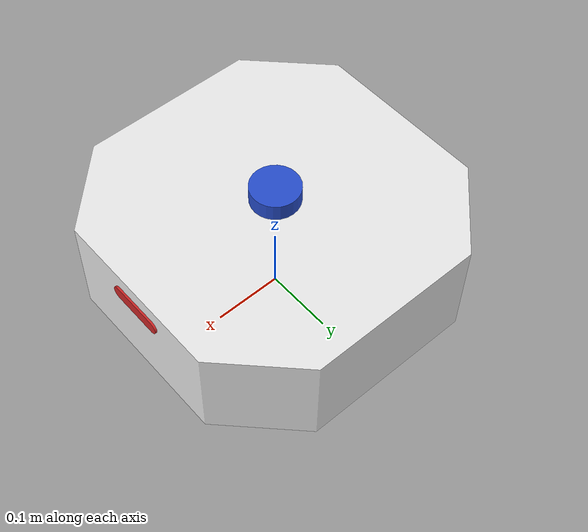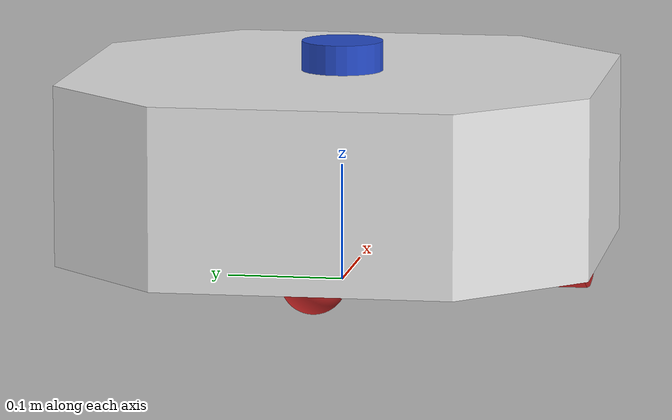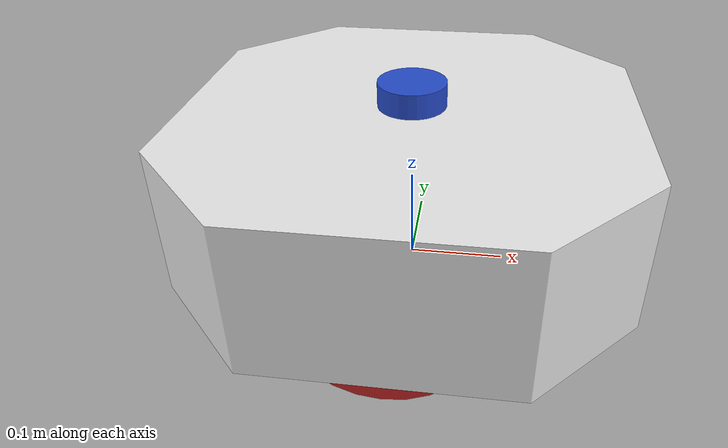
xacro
<?xml version="1.0" encoding="utf-8"?>
<robot name="cargobot"
	xmlns:xacro="http://www.ros.org/wiki/xacro">
	<!-- Matherials -->
	<xacro:include filename="$(find cargobot_description)/urdf/cargobot_materials.xacro" />
    <!-- Gazebo parameters -->
    <xacro:include filename="$(find cargobot_description)/urdf/cargobot.gazebo" />
    <xacro:property name="clearance" value="0.028" />
    <xacro:property name="wheel_radius" value="0.085"/>
    <xacro:property name="wheel_separation" value="0.383"/>
    <xacro:property name="wheel_width" value="0.045"/>
    <xacro:property name="mass" value="0.1"/>
    <xacro:property name="wheel_mass" value="0.2"/>
    <xacro:property name="marker_mass" value="0.0"/>
    <xacro:property name="inertia" value="0.3"/>
    <xacro:property name="PI" value="3.1415926"/>
    <xacro:property name="wheel_ixx" value="${wheel_mass*(3*wheel_radius*wheel_radius+wheel_width*wheel_width)/12}" />
    <xacro:property name="wheel_ixy" value="0.0" />
    <xacro:property name="wheel_ixz" value="0.0" />
    <xacro:property name="wheel_iyy" value="${wheel_mass*(3*wheel_radius*wheel_radius+wheel_width*wheel_width)/12}" />
    <xacro:property name="wheel_iyz" value="0.0" />
    <xacro:property name="wheel_izz" value="${wheel_mass*wheel_radius*wheel_radius/2}" />
	<!-- streetbot_base -->
    <link name="base_link">
    </link>
	<link name="body_link">
		<visual>
			<origin xyz="0 0 ${clearance}" rpy="${PI/2} 0 ${PI/2}" />
            <geometry>
                <mesh filename="package://cargobot_description/meshes/body_link.stl" scale="0.001 0.001 0.001" />
            </geometry>
			<material name="White" />
		</visual>
		<collision>
			<origin xyz="0 0 ${clearance}" rpy="${PI/2} 0 ${PI/2}" />
            <geometry>
                <mesh filename="package://cargobot_description/meshes/body_link.stl" scale="0.001 0.001 0.001" />
            </geometry>
		</collision>
        <inertial>
            <origin xyz="0 0 ${clearance}" rpy="0 0 0" />
            <mass value="${mass}" />
            <inertia ixx="${inertia}" ixy="0.0" ixz="0.0" iyy="${inertia}" iyz="0.0" izz="${inertia}" />
        </inertial>
	</link>
    <link name="camera_link">
		<visual>
			<origin xyz="0 0 0" rpy="0 0 ${PI/2}" />
            <geometry>
                <mesh filename="package://cargobot_description/meshes/camera_link.stl" scale="0.001 0.001 0.001" />
            </geometry>
			<material name="Red" />
		</visual>
		<collision>
			<origin xyz="0 0 0" rpy="0 0 ${PI/2}" />
            <geometry>
                <mesh filename="package://cargobot_description/meshes/camera_link.stl" scale="0.001 0.001 0.001" />
            </geometry>
		</collision>
        <inertial>
            <origin xyz="0 0 0" rpy="0 0 0" />
            <mass value="${mass}" />
            <inertia ixx="${inertia}" ixy="0.0" ixz="0.0" iyy="${inertia}" iyz="0.0" izz="${inertia}" />
        </inertial>
    </link>
    <link name="laser">
        <inertial>
            <origin xyz="0 0 0" rpy="0 0 0" />
            <mass value="0.1" />
            <inertia ixx="0.0" ixy="0.0" ixz="0.0" iyy="0.0" iyz="0.0" izz="0.0" />
        </inertial>
        <visual>
            <origin xyz="0 0 0" rpy="0 0 0" />
            <geometry>
                <cylinder radius="0.035" length="0.039"/>
            </geometry>
            <material name="Blue" />
        </visual>
        <collision>
            <origin xyz="0 0 0" rpy="0 0 0"/>
            <geometry>
                <cylinder radius="0.035" length="0.025"/>
            </geometry>
        </collision>
    </link>
    <joint name="base_to_body" type="fixed">
        <axis rpy="0 0 0" xyz="0 0 0"/>
        <parent link="base_link" />
        <child link="body_link" />
        <origin xyz="0 0 0" rpy="0 0 0"/>
    </joint>
    <joint name="camera_to_base" type="fixed">
        <axis rpy="0 0 0" xyz="0 0 0"/>
        <parent link="body_link" />
        <child link="camera_link" />
        <origin xyz="0.229 0 ${clearance + 0.120}" rpy="0 0 0"/>
    </joint>
    <joint name="laser_to_base" type="fixed">
        <axis rpy="0 0 0" xyz="0 0 0"/>
        <parent link="body_link" />
        <child link="laser" />
        <origin xyz="0 0 ${clearance + 0.16}" rpy="0 0 0"/>
    </joint>
    <!-- Wheels -->
    <link name="left_wheel">
        <visual>
			<origin xyz="0 0 0" rpy="${PI / 2} 0 0" />
            <geometry>
                <cylinder length="${wheel_width}" radius="${wheel_radius}"/>
            </geometry>
            <material name="Red" />
        </visual>
        <collision>
			<origin xyz="0 0 0" rpy="${PI / 2} 0 0" />
            <geometry>
                <cylinder length="${wheel_width}" radius="${wheel_radius}"/>
            </geometry>
        </collision>
        <inertial>
            <mass value="${wheel_mass}" />
            <inertia ixx="${wheel_ixx}" ixy="${wheel_ixy}" ixz="${wheel_ixz}" iyy="${wheel_iyy}" iyz="${wheel_iyz}" izz="${wheel_izz}" />
        </inertial>
    </link>
    <link name="right_wheel">
        <visual>
			<origin xyz="0 0 0" rpy="${PI / 2} 0 0" />
            <geometry>
                <cylinder length="${wheel_width}" radius="${wheel_radius}"/>
            </geometry>
            <material name="Red" />
        </visual>
        <collision>
			<origin xyz="0 0 0" rpy="${PI / 2} 0 0" />
            <geometry>
                <cylinder length="${wheel_width}" radius="${wheel_radius}"/>
            </geometry>
        </collision>
        <inertial>
            <mass value="${wheel_mass}" />
            <inertia ixx="${wheel_ixx}" ixy="${wheel_ixy}" ixz="${wheel_ixz}" iyy="${wheel_iyy}" iyz="${wheel_iyz}" izz="${wheel_izz}" />
        </inertial>
    </link>
        <link name="caster_link1">
        <visual>
			<origin xyz="0 0 0" rpy="${PI / 2} 0 0" />
            <geometry>
                <mesh filename="package://cargobot_description/meshes/caster_link.stl" scale="0.001 0.001 0.001" />
            </geometry>
            <material name="Red" />
        </visual>
        <collision>
			<origin xyz="0 0 0" rpy="${PI / 2} 0 0" />
            <geometry>
                <mesh filename="package://cargobot_description/meshes/caster_link.stl" scale="0.001 0.001 0.001" />
            </geometry>
        </collision>
        <inertial>
            <mass value="${wheel_mass}" />
            <inertia ixx="${wheel_ixx}" ixy="${wheel_ixy}" ixz="${wheel_ixz}" iyy="${wheel_iyy}" iyz="${wheel_iyz}" izz="${wheel_izz}" />
        </inertial>
    </link>
    <link name="caster_link2">
        <visual>
			<origin xyz="0 0 0" rpy="${PI / 2} 0 0" />
            <geometry>
                <mesh filename="package://cargobot_description/meshes/caster_link.stl" scale="0.001 0.001 0.001" />
            </geometry>
            <material name="Red" />
        </visual>
        <collision>
			<origin xyz="0 0 0" rpy="${PI / 2} 0 0" />
            <geometry>
                <mesh filename="package://cargobot_description/meshes/caster_link.stl" scale="0.001 0.001 0.001" />
            </geometry>
        </collision>
        <inertial>
            <mass value="${wheel_mass}" />
            <inertia ixx="${wheel_ixx}" ixy="${wheel_ixy}" ixz="${wheel_ixz}" iyy="${wheel_iyy}" iyz="${wheel_iyz}" izz="${wheel_izz}" />
        </inertial>
    </link>
    <joint name="base_to_left_wheel" type="continuous">
        <axis rpy="0 0 0" xyz="0 1 0"/>
        <parent link="body_link" />
        <child link="left_wheel" />
        <origin xyz="0.0 ${wheel_separation/2} ${wheel_radius}" rpy="0 0 0"/>
        <dynamics damping="0.0" friction="0.0"/>
        <limit effort= "100" velocity="100"/>
    </joint>
    <joint name="base_to_right_wheel" type="continuous">
        <axis rpy="0 0 0" xyz="0 1 0"/>
        <parent link="body_link" />
        <child link="right_wheel" />
		<origin xyz="0.0 ${-1 * (wheel_separation/2)} ${wheel_radius}" rpy="0 0 0"/>
        <dynamics damping="0.0" friction="0.0"/>
        <limit effort= "100" velocity="100"/>
    </joint>
    <joint name="base_to_caster1" type="fixed">
		<origin xyz="-0.155 0 ${clearance}" rpy="${PI/2} 0 0" />
		<parent link="body_link" />
		<child link="caster_link1" />
		<axis xyz="0 1 0" />
	</joint>
    <joint name="base_to_caster2" type="fixed">
		<origin xyz="0.155 0 ${clearance}" rpy="${PI/2} 0 0" />
		<parent link="body_link" />
		<child link="caster_link2" />
		<axis xyz="0 1 0" />
	</joint>
</robot>
